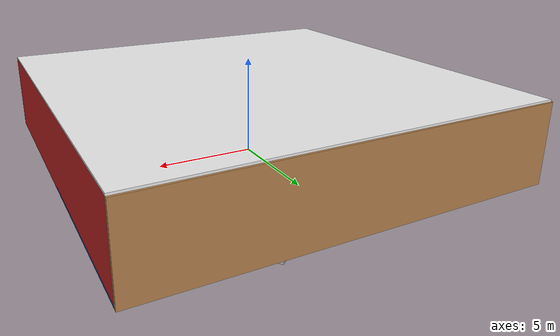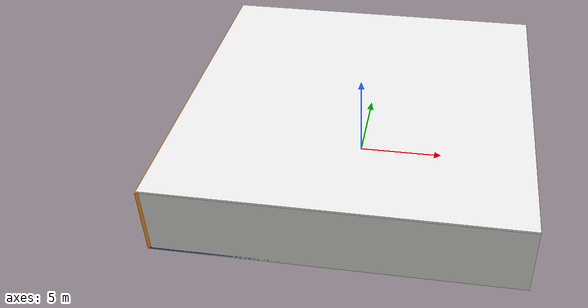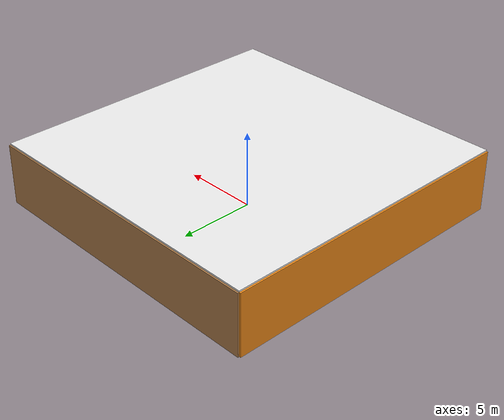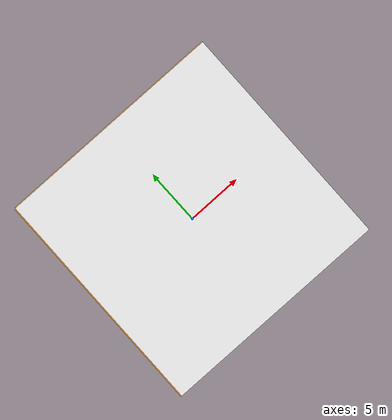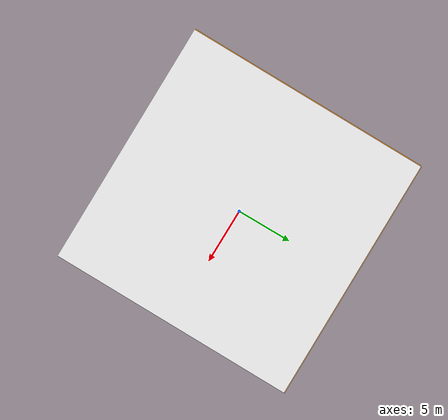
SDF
<sdf version="1.4">
 <world name="default">
  <physics type="ode">
   <max_step_size>0.001</max_step_size>
   <real_time_factor>1</real_time_factor>
   <real_time_update_rate>1000</real_time_update_rate>
   <gravity>0 0 -9.8</gravity>
  </physics>
  <scene><ambient>0.4 0.4 0.4 1</ambient><background>0.7 0.7 0.7 1</background><shadows>1</shadows></scene>
  <model name="Surrounding">
   <static>1</static>
   <link name="Ceiling">
    <collision name="Ceiling_Collision"><geometry><box><size>20 20 0.1</size></box></geometry></collision>
    <visual name="Ceiling_Visual">
     <geometry><box><size>20 20 0.1</size></box></geometry>
     <material>
      <script><uri>file://media/materials/scripts/gazebo.material</uri><name>Gazebo/White</name></script>
     </material>
    </visual>
    <pose>0 0 4.05 0 0 0</pose>
   </link>
   <link name="Wall_South">
    <collision name="Wall_South_Collision">
     <geometry><box><size>20 0 4</size></box></geometry>
     <pose>0 0 2 0 -0 0</pose>
    </collision>
    <visual name="Wall_South_Visual">
     <pose>0 0 2 0 -0 0</pose>
     <geometry><box><size>20 0 4</size></box></geometry>
     <material>
      <script><uri>file://media/materials/scripts/gazebo.material</uri><name>Gazebo/CeilingTiled</name></script>
     </material>
    </visual>
    <velocity_decay><linear>0</linear><angular>0</angular></velocity_decay>
    <pose>0 -10 0 0 -0 0</pose>
   </link>
   <link name="Wall_East">
    <collision name="Wall_21_Collision">
     <geometry><box><size>20 0 4</size></box></geometry>
     <pose>0 0 2 0 -0 0</pose>
    </collision>
    <visual name="Wall_21_Visual">
     <pose>0 0 2 0 -0 0</pose>
     <geometry><box><size>20 0 4</size></box></geometry>
     <material>
      <script><uri>file://media/materials/scripts/gazebo.material</uri><name>Gazebo/RedGlow</name></script>
     </material>
    </visual>
    <velocity_decay><linear>0</linear><angular>0</angular></velocity_decay>
    <pose>10 0 0 0 -0 1.5708</pose>
   </link>
   <link name="Wall_North">
    <collision name="Wall_22_Collision">
     <geometry><box><size>20 0.2 4</size></box></geometry>
     <pose>0 0 2 0 -0 0</pose>
    </collision>
    <visual name="Wall_22_Visual">
     <pose>0 0 2 0 -0 0</pose>
     <geometry><box><size>20 0.2 4</size></box></geometry>
     <material>
      <script><uri>file://media/materials/scripts/gazebo.material</uri><name>Gazebo/WoodFloor</name></script>
     </material>
    </visual>
    <velocity_decay><linear>0</linear><angular>0</angular></velocity_decay>
    <pose>0 10 0 0 -0 0</pose>
   </link>
   <link name="Wall_West">
    <collision name="Wall_23_Collision">
     <geometry><box><size>20 0.2 4</size></box></geometry>
     <pose>0 0 2 0 -0 0</pose>
    </collision>
    <visual name="Wall_23_Visual">
     <pose>0 0 2 0 -0 0</pose>
     <geometry><box><size>20 0.2 4</size></box></geometry>
     <material>
      <script><uri>file://media/materials/scripts/gazebo.material</uri><name>Gazebo/Orange</name></script>
     </material>
    </visual>
    <velocity_decay><linear>0</linear><angular>0</angular></velocity_decay>
    <pose>-10 0 0 0 0 -1.5708</pose>
   </link>
   <link name="Ground_link">
    <collision name="collision">
     <pose>0 0 .05 0 -0 0</pose>
     <geometry><box><size>20 20 0.1</size></box></geometry>
    </collision>
    <visual name="visual">
     <pose>0 0 .05 0 -0 0</pose>
     <geometry><box><size>20 20 0.1</size></box></geometry>
     <material>
      <script><uri>file://media/materials/scripts/gazebo.material</uri><name>Gazebo/BlueLaser</name></script>
     </material>
    </visual>
   </link>
   <static>1</static>
  </model>
  <spherical_coordinates>
   <surface_model>EARTH_WGS84</surface_model>
   <latitude_deg>0</latitude_deg>
   <longitude_deg>0</longitude_deg>
   <elevation>0</elevation>
   <heading_deg>0</heading_deg>
  </spherical_coordinates>
  <light name="lightball_0" type="diffuse">
   <diffuse>0.8 0.8 0.8 1</diffuse>
   <specular>0.2 0.2 0.2 1</specular>
   <attenuation>
    <range>100</range>
    <constant>0.7</constant>
    <linear>0.01</linear>
    <quadratic>0.001</quadratic>
   </attenuation>
   <direction>-0.5 0.1 -0.9</direction>
   <pose>-9.03029659102 8.06591285205 1.67390955971 0 0 0</pose>
  </light>
  <light name="lightball_1" type="diffuse">
   <diffuse>0.8 0.8 0.8 1</diffuse>
   <specular>0.2 0.2 0.2 1</specular>
   <attenuation>
    <range>100</range>
    <constant>0.7</constant>
    <linear>0.01</linear>
    <quadratic>0.001</quadratic>
   </attenuation>
   <direction>-0.5 0.1 -0.9</direction>
   <pose>-6.70571760608 3.27408538672 3.27642992859 0 0 0</pose>
  </light>
  <light name="lightball_2" type="diffuse">
   <diffuse>0.8 0.8 0.8 1</diffuse>
   <specular>0.2 0.2 0.2 1</specular>
   <attenuation>
    <range>100</range>
    <constant>0.7</constant>
    <linear>0.01</linear>
    <quadratic>0.001</quadratic>
   </attenuation>
   <direction>-0.5 0.1 -0.9</direction>
   <pose>-9.5216344111 7.86666531806 1.84444019436 0 0 0</pose>
  </light>
  <light name="lightball_3" type="diffuse">
   <diffuse>0.8 0.8 0.8 1</diffuse>
   <specular>0.2 0.2 0.2 1</specular>
   <attenuation>
    <range>100</range>
    <constant>0.7</constant>
    <linear>0.01</linear>
    <quadratic>0.001</quadratic>
   </attenuation>
   <direction>-0.5 0.1 -0.9</direction>
   <pose>-4.5080199457 -5.0078249787 1.368201096 0 0 0</pose>
  </light>
  <light name="lightball_4" type="diffuse">
   <diffuse>0.8 0.8 0.8 1</diffuse>
   <specular>0.2 0.2 0.2 1</specular>
   <attenuation>
    <range>100</range>
    <constant>0.7</constant>
    <linear>0.01</linear>
    <quadratic>0.001</quadratic>
   </attenuation>
   <direction>-0.5 0.1 -0.9</direction>
   <pose>4.22514253624 9.94493621277 3.26758711054 0 0 0</pose>
  </light>
  <include>
   <uri>model://construction_cone</uri>
   <pose>-7.93471526729 1.19203681998 0 0 0 1.46185198209</pose>
  </include>
  <include><uri>model://cabinet</uri><pose>-7.56597388323 5.28815238666 0 0 0 1.93190294152</pose></include>
  <include>
   <uri>model://textured_shapes</uri>
   <pose>2.05636135117 4.45078154726 0 0 0 2.00561893511</pose>
  </include>
  <include>
   <uri>model://textured_shapes</uri>
   <pose>2.25883501753 8.03757356207 0 0 0 2.20933929148</pose>
  </include>
 </world>
</sdf>

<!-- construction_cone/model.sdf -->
<sdf version="1.5">
  <model name="Construction Cone">
    <link name="link">
      <collision name="collision">
        <geometry>
          <mesh>
            <scale>10 10 10</scale>
            <uri>file://isr-testbed/construction_cone/meshes/construction_cone.dae</uri>
          </mesh>
        </geometry>
      </collision>
      <visual name="visual">
        <geometry>
          <mesh>
            <scale>10 10 10</scale>
            <uri>file://isr-testbed/construction_cone/meshes/construction_cone.dae</uri>
          </mesh>
        </geometry>
      </visual>
    </link>
  </model>
</sdf>

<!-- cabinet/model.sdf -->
<sdf version="1.5">
  <model name="cabinet">
    <static>true</static>
    <link name="cabinet_bottom_plate">
      <inertial>
        <pose>0 0 -1 0 0 0</pose>
        <inertia>
          <ixx>2.050000</ixx>
          <ixy>0</ixy>
          <ixz>0</ixz>
          <iyy>2.050000</iyy>
          <iyz>0</iyz>
          <izz>2.050000</izz>
        </inertia>
        <mass>25.000000</mass>
      </inertial>
      <collision name="cabinet_bottom_plate_geom">
        <pose>0 0 0.010000 0 0 0</pose>
        <geometry>
          <box>
            <size>0.450000 0.450000 0.020000</size>
          </box>
        </geometry>
      </collision>
      <visual name="cabinet_bottom_plate_geom_visual">
        <pose>0 0 0.010000 0 0 0</pose>
        <geometry>
          <box>
            <size>0.450000 0.450000 0.020000</size>
          </box>
        </geometry>
        <material>
          <script>
            <uri>model://media/materials/scripts/gazebo.material</uri>
            <name>Gazebo/Wood</name>
          </script>
        </material>
      </visual>
      <collision name="cabinet_bottom_plate_geom_cabinet_back_plate">
        <pose>0.235000 0 0.510000 0 0 0</pose>
        <geometry>
          <box>
            <size>0.020000 0.450000 1.020000</size>
          </box>
        </geometry>
      </collision>
      <visual name="cabinet_bottom_plate_geom_cabinet_back_plate_visual">
        <pose>0.235000 0 0.510000 0 0 0</pose>
        <geometry>
          <box>
            <size>0.020000 0.450000 1.020000</size>
          </box>
        </geometry>
        <material>
          <script>
            <uri>model://media/materials/scripts/gazebo.material</uri>
            <name>Gazebo/Wood</name>
          </script>
        </material>
      </visual>
      <collision name="cabinet_bottom_plate_geom_cabinet_left_plate">
        <pose>0 0.235000 0.510000 0 0 0</pose>
        <geometry>
          <box>
            <size>0.450000 0.020000 1.020000</size>
          </box>
        </geometry>
      </collision>
      <visual name="cabinet_bottom_plate_geom_cabinet_left_plate_visual">
        <pose>0 0.235000 0.510000 0 0 0</pose>
        <geometry>
          <box>
            <size>0.450000 0.020000 1.020000</size>
          </box>
        </geometry>
        <material>
          <script>
            <uri>model://media/materials/scripts/gazebo.material</uri>
            <name>Gazebo/Wood</name>
          </script>
        </material>
      </visual>
      <collision name="cabinet_bottom_plate_geom_cabinet_middle_plate">
        <pose>0 0 0.510000 0 0 0</pose>
        <geometry>
          <box>
            <size>0.450000 0.450000 0.020000</size>
          </box>
        </geometry>
      </collision>
      <visual name="cabinet_bottom_plate_geom_cabinet_middle_plate_visual">
        <pose>0 0 0.510000 0 0 0</pose>
        <geometry>
          <box>
            <size>0.450000 0.450000 0.020000</size>
          </box>
        </geometry>
        <material>
          <script>
            <uri>model://media/materials/scripts/gazebo.material</uri>
            <name>Gazebo/Wood</name>
          </script>
        </material>
      </visual>
      <collision name="cabinet_bottom_plate_geom_cabinet_right_plate">
        <pose>0 -0.235000 0.510000 0 0 0</pose>
        <geometry>
          <box>
            <size>0.450000 0.020000 1.020000</size>
          </box>
        </geometry>
      </collision>
      <visual name="cabinet_bottom_plate_geom_cabinet_right_plate_visual">
        <pose>0 -0.235000 0.510000 0 0 0</pose>
        <geometry>
          <box>
            <size>0.450000 0.020000 1.020000</size>
          </box>
        </geometry>
        <material>
          <script>
            <uri>model://media/materials/scripts/gazebo.material</uri>
            <name>Gazebo/Wood</name>
          </script>
        </material>
      </visual>
      <collision name="cabinet_bottom_plate_geom_cabinet_top_plate">
        <pose>0 0 1.010000 0 0 0</pose>
        <geometry>
          <box>
            <size>0.450000 0.450000 0.020000</size>
          </box>
        </geometry>
      </collision>
      <visual name="cabinet_bottom_plate_geom_cabinet_top_plate_visual">
        <pose>0 0 1.010000 0 0 0</pose>
        <geometry>
          <box>
            <size>0.450000 0.450000 0.020000</size>
          </box>
        </geometry>
        <material>
          <script>
            <uri>model://media/materials/scripts/gazebo.material</uri>
            <name>Gazebo/Wood</name>
          </script>
        </material>
      </visual>
    </link>
  </model>
</sdf>

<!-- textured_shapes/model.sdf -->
<sdf version="1.6">
  <model name="textured_shapes">
    <pose>0 0 0.5 0 0 0</pose>
    <link name="box">
      <pose>0 -1.5 0 0 0 0</pose>
      <collision name="collision">
        <geometry>
          <box>
            <size>1 1 1</size>
          </box>
        </geometry>
      </collision>
      <visual name="visual">
        <geometry>
          <box>
            <size>1 1 1</size>
          </box>
        </geometry>
        <material>
          <script>
            <uri>model://../model_source/models/textured_shapes/materials/scripts</uri>
            <uri>model://../model_source/models/textured_shapes/materials/textures</uri>
            <name>TexturedShape/Squares</name>
          </script>
        </material>
      </visual>
    </link>
    <link name="sphere">
      <collision name="collision">
        <geometry>
          <sphere>
            <radius>0.5</radius>
          </sphere>
        </geometry>
      </collision>
      <visual name="visual">
        <geometry>
          <sphere>
            <radius>0.5</radius>
          </sphere>
        </geometry>
        <material>
          <script>
            <uri>model://../model_source/models/textured_shapes/materials/scripts</uri>
            <uri>model://../model_source/models/textured_shapes/materials/textures</uri>
            <name>TexturedShape/Squares</name>
          </script>
        </material>
      </visual>
    </link>
    <link name="cylinder">
      <pose>0 1.5 0 0 0 0</pose>
      <collision name="collision">
        <geometry>
          <cylinder>
            <radius>0.5</radius>
            <length>1</length>
          </cylinder>
        </geometry>
      </collision>
      <visual name="visual">
        <geometry>
          <cylinder>
            <radius>0.5</radius>
            <length>1</length>
          </cylinder>
        </geometry>
        <material>
          <script>
            <uri>model://../model_source/models/textured_shapes/materials/scripts</uri>
            <uri>model://../model_source/models/textured_shapes/materials/textures</uri>
            <name>TexturedShape/Squares</name>
          </script>
        </material>
      </visual>
    </link>
  </model>
</sdf>
